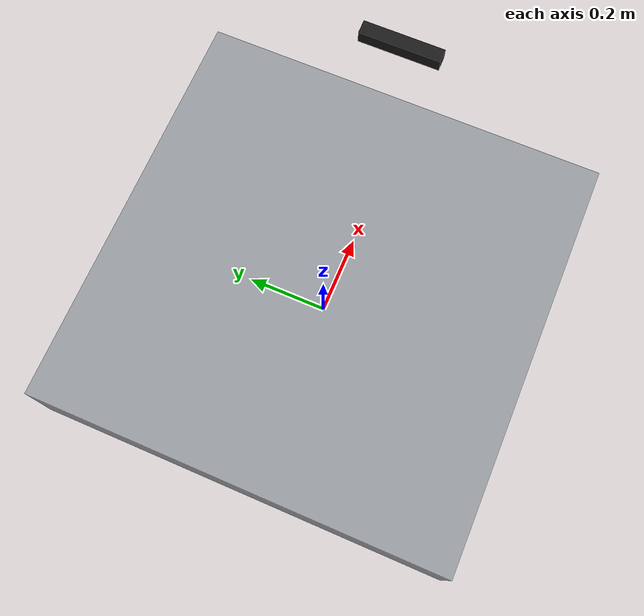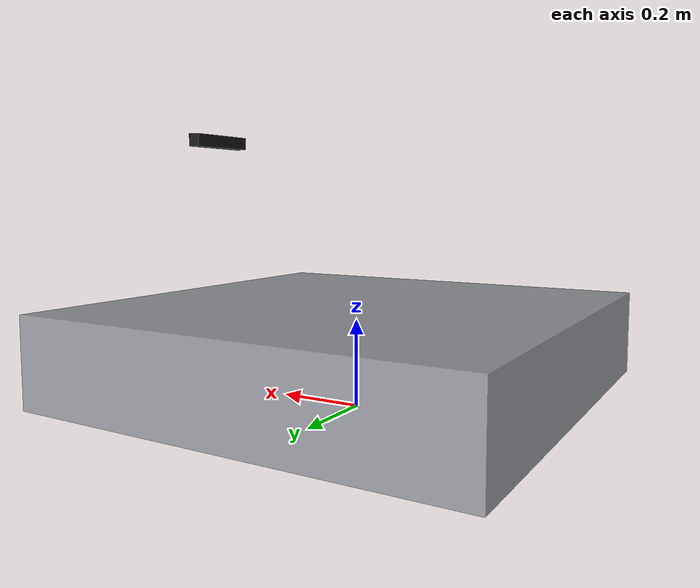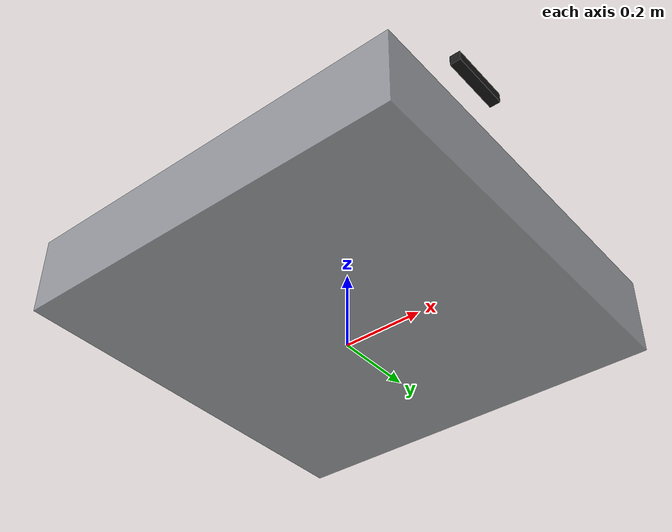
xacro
<?xml version="1.0"?>
<robot name="rover" xmlns:xacro="http://www.ros.org/wiki/xacro">
  <xacro:arg name="wheel_radius" default="0.14"/>
  <xacro:arg name="length" default="1.0"/>
  <xacro:arg name="width" default="1.0"/>
  <xacro:arg name="zed_name" default="zed"/>
  <xacro:arg name="zed_x" default="0.4"/>
  <xacro:arg name="zed_y" default="0.0"/>
  <xacro:arg name="zed_z" default="0.6"/>
  <xacro:arg name="zed_pitch" default="0.0"/>

  <xacro:property name="r" value="$(arg wheel_radius)"/>
  <xacro:property name="body_height" value="0.2"/>

  <link name="base_footprint"/>

  <link name="base_link">
    <visual>
      <geometry><box size="$(arg length) $(arg width) ${body_height}"/></geometry>
      <material name="rover_grey"><color rgba="0.55 0.57 0.6 0.8"/></material>
    </visual>
  </link>
  <joint name="base_link_joint" type="fixed">
    <parent link="base_footprint"/>
    <child link="base_link"/>
    <origin xyz="0 0 ${r}" rpy="0 0 0"/>
  </joint>

  <link name="$(arg zed_name)_camera_link">
    <visual>
      <origin xyz="0 0 0.015" rpy="0 0 0"/>
      <geometry><box size="0.03 0.175 0.03"/></geometry>
      <material name="zed_black"><color rgba="0.1 0.1 0.1 1"/></material>
    </visual>
  </link>
  <joint name="zed_mount_joint" type="fixed">
    <parent link="base_link"/>
    <child link="$(arg zed_name)_camera_link"/>
    <origin xyz="$(arg zed_x) $(arg zed_y) ${$(arg zed_z) - r}" rpy="0 $(arg zed_pitch) 0"/>
  </joint>
</robot>
